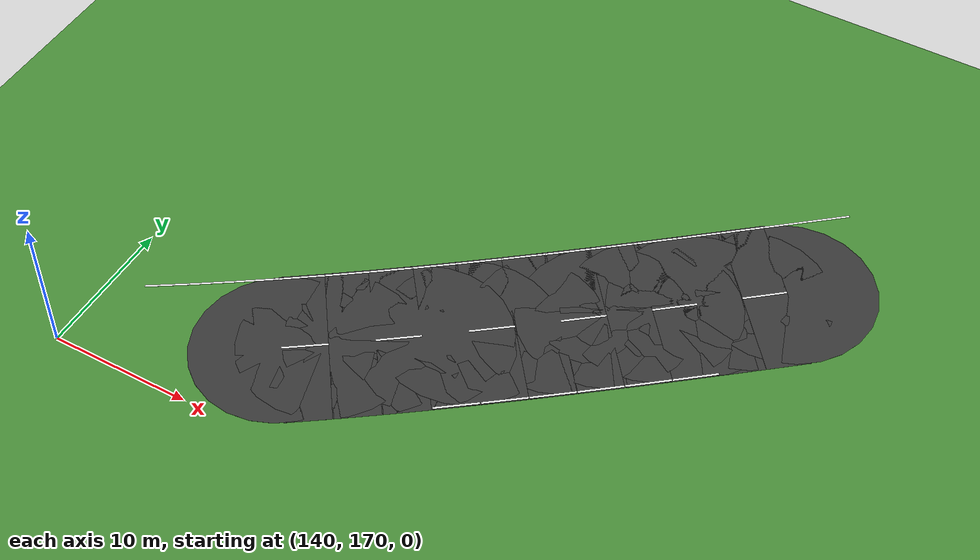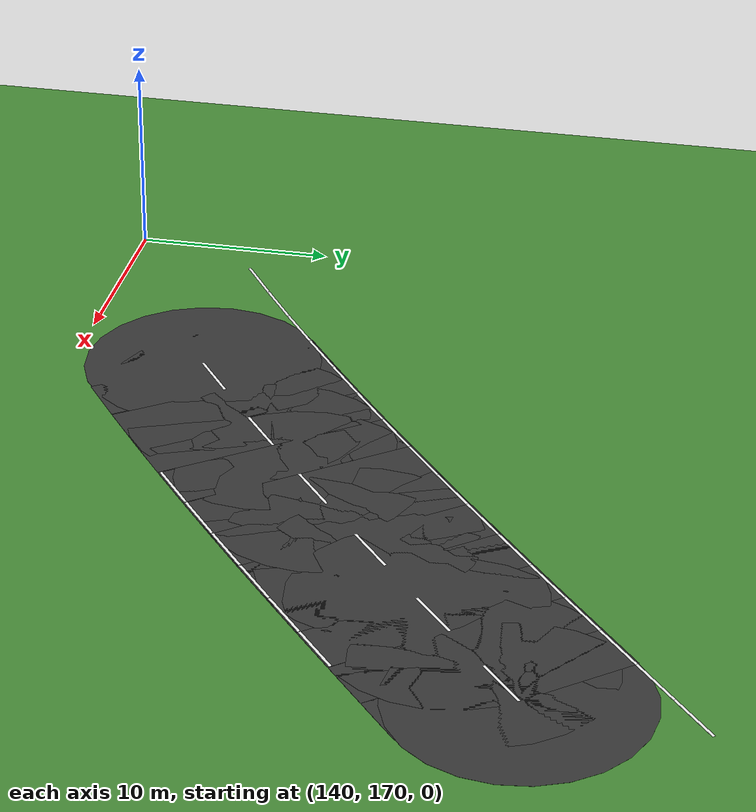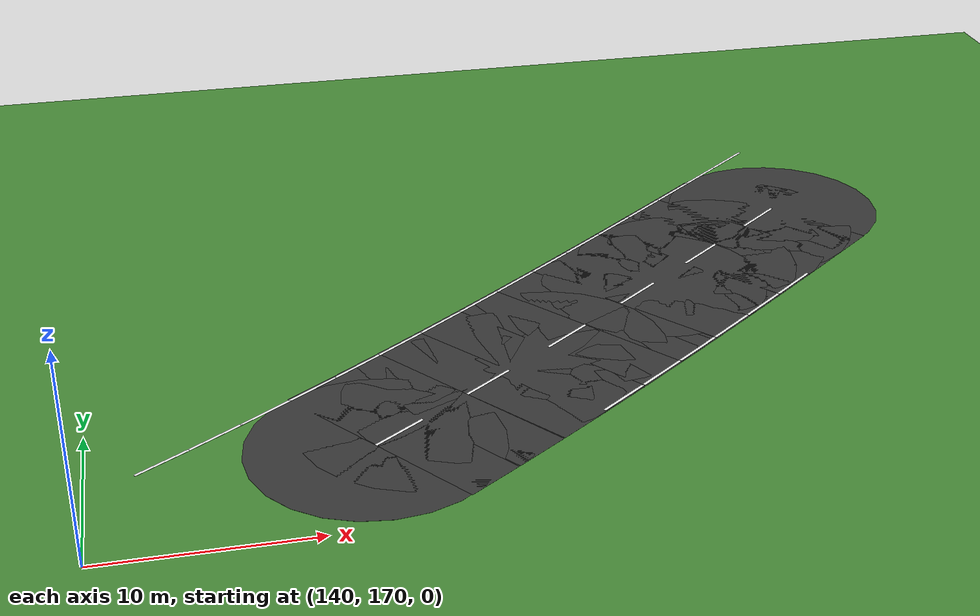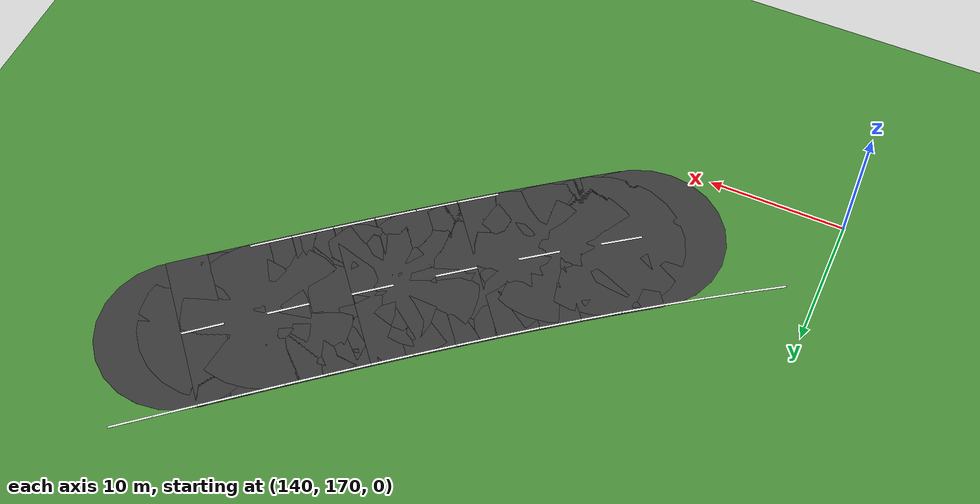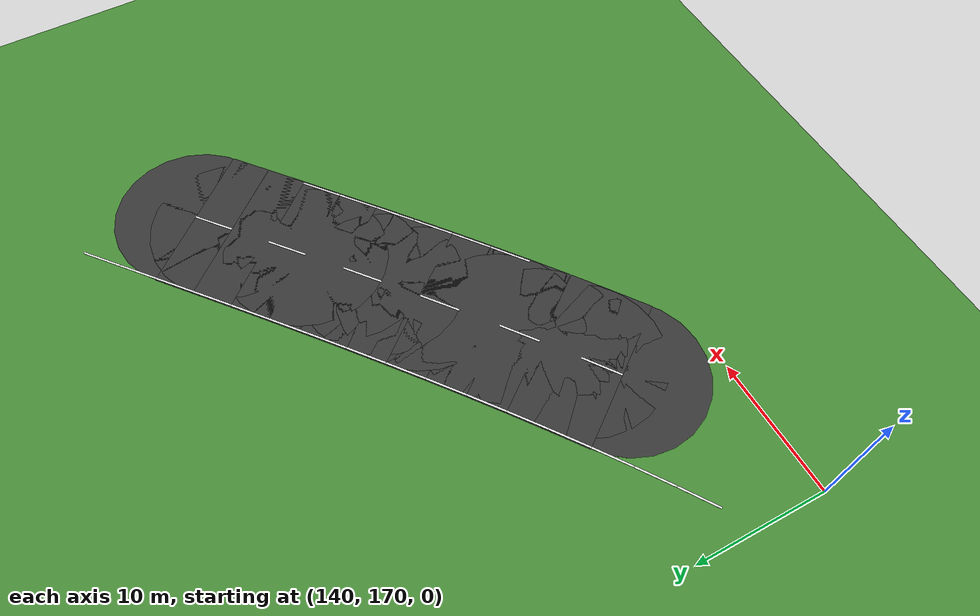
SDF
<sdf version="1.6">
 <world name="sem_silesia_ring_2026">
  <model name="ground_plane">
   <static>true</static>
   <link name="link">
    <collision name="collision">
     <geometry><plane><normal>0 0 1</normal><size>1200 1200</size></plane></geometry>
     <surface><friction><ode><mu>0.6</mu><mu2>0.6</mu2></ode></friction></surface>
    </collision>
    <visual name="visual">
     <geometry><plane><normal>0 0 1</normal><size>1200 1200</size></plane></geometry>
     <material><ambient>0.28 0.55 0.22 1</ambient><diffuse>0.28 0.55 0.22 1</diffuse></material>
    </visual>
   </link>
  </model>
  <model name="wl_R_s252">
   <static>true</static>
   <pose>178.4328 204.4010 0.0070 0 0 -2.4422</pose>
   <link name="link">
    <visual name="v">
     <geometry><box><size>3.0025 0.1500 0.0080</size></box></geometry>
     <material><ambient>0.95 0.95 0.95 1</ambient><diffuse>0.95 0.95 0.95 1</diffuse></material>
    </visual>
   </link>
  </model>
  <model name="wl_R_s253">
   <static>true</static>
   <pose>176.1369 202.4706 0.0070 0 0 -2.4427</pose>
   <link name="link">
    <visual name="v">
     <geometry><box><size>3.0025 0.1500 0.0080</size></box></geometry>
     <material><ambient>0.95 0.95 0.95 1</ambient><diffuse>0.95 0.95 0.95 1</diffuse></material>
    </visual>
   </link>
  </model>
  <model name="road_s254">
   <static>true</static>
   <pose>177.6004 196.0621 0.0030 0 0 -2.4443</pose>
   <link name="link">
    <visual name="v">
     <geometry><box><size>3.0025 12.0000 0.0060</size></box></geometry>
     <material><ambient>0.22 0.22 0.22 1</ambient><diffuse>0.22 0.22 0.22 1</diffuse></material>
    </visual>
    <collision name="c">
     <geometry><box><size>3.0025 12.0000 0.0060</size></box></geometry>
     <surface><friction><ode><mu>0.9</mu><mu2>0.9</mu2></ode></friction></surface>
    </collision>
   </link>
  </model>
  <model name="road_jnt254">
   <static>true</static>
   <pose>178.7512 197.0262 0.0030 0 0 0</pose>
   <link name="link">
    <visual name="v">
     <geometry><cylinder><radius>6.0000</radius><length>0.0060</length></cylinder></geometry>
     <material><ambient>0.22 0.22 0.22 1</ambient><diffuse>0.22 0.22 0.22 1</diffuse></material>
    </visual>
    <collision name="c">
     <geometry><cylinder><radius>6.0000</radius><length>0.0060</length></cylinder></geometry>
     <surface><friction><ode><mu>0.9</mu><mu2>0.9</mu2></ode></friction></surface>
    </collision>
   </link>
  </model>
  <model name="wl_R_s254">
   <static>true</static>
   <pose>173.8436 200.5465 0.0070 0 0 -2.4443</pose>
   <link name="link">
    <visual name="v">
     <geometry><box><size>3.0025 0.1500 0.0080</size></box></geometry>
     <material><ambient>0.95 0.95 0.95 1</ambient><diffuse>0.95 0.95 0.95 1</diffuse></material>
    </visual>
   </link>
  </model>
  <model name="cd_s254">
   <static>true</static>
   <pose>177.6004 196.0621 0.0070 0 0 -2.4443</pose>
   <link name="link">
    <visual name="v">
     <geometry><box><size>3.0025 0.1500 0.0080</size></box></geometry>
     <material><ambient>0.95 0.95 0.95 1</ambient><diffuse>0.95 0.95 0.95 1</diffuse></material>
    </visual>
   </link>
  </model>
  <model name="road_s255">
   <static>true</static>
   <pose>175.2963 194.1369 0.0030 0 0 -2.4468</pose>
   <link name="link">
    <visual name="v">
     <geometry><box><size>3.0025 12.0000 0.0060</size></box></geometry>
     <material><ambient>0.22 0.22 0.22 1</ambient><diffuse>0.22 0.22 0.22 1</diffuse></material>
    </visual>
    <collision name="c">
     <geometry><box><size>3.0025 12.0000 0.0060</size></box></geometry>
     <surface><friction><ode><mu>0.9</mu><mu2>0.9</mu2></ode></friction></surface>
    </collision>
   </link>
  </model>
  <model name="road_jnt255">
   <static>true</static>
   <pose>176.4496 195.0980 0.0030 0 0 0</pose>
   <link name="link">
    <visual name="v">
     <geometry><cylinder><radius>6.0000</radius><length>0.0060</length></cylinder></geometry>
     <material><ambient>0.22 0.22 0.22 1</ambient><diffuse>0.22 0.22 0.22 1</diffuse></material>
    </visual>
    <collision name="c">
     <geometry><cylinder><radius>6.0000</radius><length>0.0060</length></cylinder></geometry>
     <surface><friction><ode><mu>0.9</mu><mu2>0.9</mu2></ode></friction></surface>
    </collision>
   </link>
  </model>
  <model name="wl_R_s255">
   <static>true</static>
   <pose>171.5511 198.6309 0.0070 0 0 -2.4468</pose>
   <link name="link">
    <visual name="v">
     <geometry><box><size>3.0025 0.1500 0.0080</size></box></geometry>
     <material><ambient>0.95 0.95 0.95 1</ambient><diffuse>0.95 0.95 0.95 1</diffuse></material>
    </visual>
   </link>
  </model>
  <model name="road_s256">
   <static>true</static>
   <pose>172.9863 192.2188 0.0030 0 0 -2.4504</pose>
   <link name="link">
    <visual name="v">
     <geometry><box><size>3.0025 12.0000 0.0060</size></box></geometry>
     <material><ambient>0.22 0.22 0.22 1</ambient><diffuse>0.22 0.22 0.22 1</diffuse></material>
    </visual>
    <collision name="c">
     <geometry><box><size>3.0025 12.0000 0.0060</size></box></geometry>
     <surface><friction><ode><mu>0.9</mu><mu2>0.9</mu2></ode></friction></surface>
    </collision>
   </link>
  </model>
  <model name="road_jnt256">
   <static>true</static>
   <pose>174.1430 193.1758 0.0030 0 0 0</pose>
   <link name="link">
    <visual name="v">
     <geometry><cylinder><radius>6.0000</radius><length>0.0060</length></cylinder></geometry>
     <material><ambient>0.22 0.22 0.22 1</ambient><diffuse>0.22 0.22 0.22 1</diffuse></material>
    </visual>
    <collision name="c">
     <geometry><cylinder><radius>6.0000</radius><length>0.0060</length></cylinder></geometry>
     <surface><friction><ode><mu>0.9</mu><mu2>0.9</mu2></ode></friction></surface>
    </collision>
   </link>
  </model>
  <model name="wl_L_s256">
   <static>true</static>
   <pose>176.7154 187.7114 0.0070 0 0 -2.4504</pose>
   <link name="link">
    <visual name="v">
     <geometry><box><size>3.0025 0.1500 0.0080</size></box></geometry>
     <material><ambient>0.95 0.95 0.95 1</ambient><diffuse>0.95 0.95 0.95 1</diffuse></material>
    </visual>
   </link>
  </model>
  <model name="wl_R_s256">
   <static>true</static>
   <pose>169.2573 196.7262 0.0070 0 0 -2.4504</pose>
   <link name="link">
    <visual name="v">
     <geometry><box><size>3.0025 0.1500 0.0080</size></box></geometry>
     <material><ambient>0.95 0.95 0.95 1</ambient><diffuse>0.95 0.95 0.95 1</diffuse></material>
    </visual>
   </link>
  </model>
  <model name="cd_s256">
   <static>true</static>
   <pose>172.9863 192.2188 0.0070 0 0 -2.4504</pose>
   <link name="link">
    <visual name="v">
     <geometry><box><size>3.0025 0.1500 0.0080</size></box></geometry>
     <material><ambient>0.95 0.95 0.95 1</ambient><diffuse>0.95 0.95 0.95 1</diffuse></material>
    </visual>
   </link>
  </model>
  <model name="road_s257">
   <static>true</static>
   <pose>170.6685 190.3102 0.0030 0 0 -2.4550</pose>
   <link name="link">
    <visual name="v">
     <geometry><box><size>3.0025 12.0000 0.0060</size></box></geometry>
     <material><ambient>0.22 0.22 0.22 1</ambient><diffuse>0.22 0.22 0.22 1</diffuse></material>
    </visual>
    <collision name="c">
     <geometry><box><size>3.0025 12.0000 0.0060</size></box></geometry>
     <surface><friction><ode><mu>0.9</mu><mu2>0.9</mu2></ode></friction></surface>
    </collision>
   </link>
  </model>
  <model name="road_jnt257">
   <static>true</static>
   <pose>171.8296 191.2618 0.0030 0 0 0</pose>
   <link name="link">
    <visual name="v">
     <geometry><cylinder><radius>6.0000</radius><length>0.0060</length></cylinder></geometry>
     <material><ambient>0.22 0.22 0.22 1</ambient><diffuse>0.22 0.22 0.22 1</diffuse></material>
    </visual>
    <collision name="c">
     <geometry><cylinder><radius>6.0000</radius><length>0.0060</length></cylinder></geometry>
     <surface><friction><ode><mu>0.9</mu><mu2>0.9</mu2></ode></friction></surface>
    </collision>
   </link>
  </model>
  <model name="wl_L_s257">
   <static>true</static>
   <pose>174.3766 185.7856 0.0070 0 0 -2.4550</pose>
   <link name="link">
    <visual name="v">
     <geometry><box><size>3.0025 0.1500 0.0080</size></box></geometry>
     <material><ambient>0.95 0.95 0.95 1</ambient><diffuse>0.95 0.95 0.95 1</diffuse></material>
    </visual>
   </link>
  </model>
  <model name="wl_R_s257">
   <static>true</static>
   <pose>166.9603 194.8348 0.0070 0 0 -2.4550</pose>
   <link name="link">
    <visual name="v">
     <geometry><box><size>3.0025 0.1500 0.0080</size></box></geometry>
     <material><ambient>0.95 0.95 0.95 1</ambient><diffuse>0.95 0.95 0.95 1</diffuse></material>
    </visual>
   </link>
  </model>
  <model name="road_s258">
   <static>true</static>
   <pose>168.3408 188.4136 0.0030 0 0 -2.4607</pose>
   <link name="link">
    <visual name="v">
     <geometry><box><size>3.0025 12.0000 0.0060</size></box></geometry>
     <material><ambient>0.22 0.22 0.22 1</ambient><diffuse>0.22 0.22 0.22 1</diffuse></material>
    </visual>
    <collision name="c">
     <geometry><box><size>3.0025 12.0000 0.0060</size></box></geometry>
     <surface><friction><ode><mu>0.9</mu><mu2>0.9</mu2></ode></friction></surface>
    </collision>
   </link>
  </model>
  <model name="road_jnt258">
   <static>true</static>
   <pose>169.5073 189.3586 0.0030 0 0 0</pose>
   <link name="link">
    <visual name="v">
     <geometry><cylinder><radius>6.0000</radius><length>0.0060</length></cylinder></geometry>
     <material><ambient>0.22 0.22 0.22 1</ambient><diffuse>0.22 0.22 0.22 1</diffuse></material>
    </visual>
    <collision name="c">
     <geometry><cylinder><radius>6.0000</radius><length>0.0060</length></cylinder></geometry>
     <surface><friction><ode><mu>0.9</mu><mu2>0.9</mu2></ode></friction></surface>
    </collision>
   </link>
  </model>
  <model name="wl_L_s258">
   <static>true</static>
   <pose>172.0233 183.8681 0.0070 0 0 -2.4607</pose>
   <link name="link">
    <visual name="v">
     <geometry><box><size>3.0025 0.1500 0.0080</size></box></geometry>
     <material><ambient>0.95 0.95 0.95 1</ambient><diffuse>0.95 0.95 0.95 1</diffuse></material>
    </visual>
   </link>
  </model>
  <model name="wl_R_s258">
   <static>true</static>
   <pose>164.6583 192.9591 0.0070 0 0 -2.4607</pose>
   <link name="link">
    <visual name="v">
     <geometry><box><size>3.0025 0.1500 0.0080</size></box></geometry>
     <material><ambient>0.95 0.95 0.95 1</ambient><diffuse>0.95 0.95 0.95 1</diffuse></material>
    </visual>
   </link>
  </model>
  <model name="cd_s258">
   <static>true</static>
   <pose>168.3408 188.4136 0.0070 0 0 -2.4607</pose>
   <link name="link">
    <visual name="v">
     <geometry><box><size>3.0025 0.1500 0.0080</size></box></geometry>
     <material><ambient>0.95 0.95 0.95 1</ambient><diffuse>0.95 0.95 0.95 1</diffuse></material>
    </visual>
   </link>
  </model>
  <model name="road_s259">
   <static>true</static>
   <pose>166.0015 186.5314 0.0030 0 0 -2.4674</pose>
   <link name="link">
    <visual name="v">
     <geometry><box><size>3.0025 12.0000 0.0060</size></box></geometry>
     <material><ambient>0.22 0.22 0.22 1</ambient><diffuse>0.22 0.22 0.22 1</diffuse></material>
    </visual>
    <collision name="c">
     <geometry><box><size>3.0025 12.0000 0.0060</size></box></geometry>
     <surface><friction><ode><mu>0.9</mu><mu2>0.9</mu2></ode></friction></surface>
    </collision>
   </link>
  </model>
  <model name="road_jnt259">
   <static>true</static>
   <pose>167.1743 187.4686 0.0030 0 0 0</pose>
   <link name="link">
    <visual name="v">
     <geometry><cylinder><radius>6.0000</radius><length>0.0060</length></cylinder></geometry>
     <material><ambient>0.22 0.22 0.22 1</ambient><diffuse>0.22 0.22 0.22 1</diffuse></material>
    </visual>
    <collision name="c">
     <geometry><cylinder><radius>6.0000</radius><length>0.0060</length></cylinder></geometry>
     <surface><friction><ode><mu>0.9</mu><mu2>0.9</mu2></ode></friction></surface>
    </collision>
   </link>
  </model>
  <model name="wl_L_s259">
   <static>true</static>
   <pose>169.6534 181.9613 0.0070 0 0 -2.4674</pose>
   <link name="link">
    <visual name="v">
     <geometry><box><size>3.0025 0.1500 0.0080</size></box></geometry>
     <material><ambient>0.95 0.95 0.95 1</ambient><diffuse>0.95 0.95 0.95 1</diffuse></material>
    </visual>
   </link>
  </model>
  <model name="wl_R_s259">
   <static>true</static>
   <pose>162.3496 191.1015 0.0070 0 0 -2.4674</pose>
   <link name="link">
    <visual name="v">
     <geometry><box><size>3.0025 0.1500 0.0080</size></box></geometry>
     <material><ambient>0.95 0.95 0.95 1</ambient><diffuse>0.95 0.95 0.95 1</diffuse></material>
    </visual>
   </link>
  </model>
  <model name="road_s260">
   <static>true</static>
   <pose>163.6487 184.6661 0.0030 0 0 -2.4751</pose>
   <link name="link">
    <visual name="v">
     <geometry><box><size>3.0025 12.0000 0.0060</size></box></geometry>
     <material><ambient>0.22 0.22 0.22 1</ambient><diffuse>0.22 0.22 0.22 1</diffuse></material>
    </visual>
    <collision name="c">
     <geometry><box><size>3.0025 12.0000 0.0060</size></box></geometry>
     <surface><friction><ode><mu>0.9</mu><mu2>0.9</mu2></ode></friction></surface>
    </collision>
   </link>
  </model>
  <model name="road_jnt260">
   <static>true</static>
   <pose>164.8287 185.5942 0.0030 0 0 0</pose>
   <link name="link">
    <visual name="v">
     <geometry><cylinder><radius>6.0000</radius><length>0.0060</length></cylinder></geometry>
     <material><ambient>0.22 0.22 0.22 1</ambient><diffuse>0.22 0.22 0.22 1</diffuse></material>
    </visual>
    <collision name="c">
     <geometry><cylinder><radius>6.0000</radius><length>0.0060</length></cylinder></geometry>
     <surface><friction><ode><mu>0.9</mu><mu2>0.9</mu2></ode></friction></surface>
    </collision>
   </link>
  </model>
  <model name="wl_L_s260">
   <static>true</static>
   <pose>167.2652 180.0679 0.0070 0 0 -2.4751</pose>
   <link name="link">
    <visual name="v">
     <geometry><box><size>3.0025 0.1500 0.0080</size></box></geometry>
     <material><ambient>0.95 0.95 0.95 1</ambient><diffuse>0.95 0.95 0.95 1</diffuse></material>
    </visual>
   </link>
  </model>
  <model name="wl_R_s260">
   <static>true</static>
   <pose>160.0322 189.2643 0.0070 0 0 -2.4751</pose>
   <link name="link">
    <visual name="v">
     <geometry><box><size>3.0025 0.1500 0.0080</size></box></geometry>
     <material><ambient>0.95 0.95 0.95 1</ambient><diffuse>0.95 0.95 0.95 1</diffuse></material>
    </visual>
   </link>
  </model>
  <model name="cd_s260">
   <static>true</static>
   <pose>163.6487 184.6661 0.0070 0 0 -2.4751</pose>
   <link name="link">
    <visual name="v">
     <geometry><box><size>3.0025 0.1500 0.0080</size></box></geometry>
     <material><ambient>0.95 0.95 0.95 1</ambient><diffuse>0.95 0.95 0.95 1</diffuse></material>
    </visual>
   </link>
  </model>
  <model name="road_s261">
   <static>true</static>
   <pose>161.2805 182.8203 0.0030 0 0 -2.4839</pose>
   <link name="link">
    <visual name="v">
     <geometry><box><size>3.0025 12.0000 0.0060</size></box></geometry>
     <material><ambient>0.22 0.22 0.22 1</ambient><diffuse>0.22 0.22 0.22 1</diffuse></material>
    </visual>
    <collision name="c">
     <geometry><box><size>3.0025 12.0000 0.0060</size></box></geometry>
     <surface><friction><ode><mu>0.9</mu><mu2>0.9</mu2></ode></friction></surface>
    </collision>
   </link>
  </model>
  <model name="road_jnt261">
   <static>true</static>
   <pose>162.4686 183.7380 0.0030 0 0 0</pose>
   <link name="link">
    <visual name="v">
     <geometry><cylinder><radius>6.0000</radius><length>0.0060</length></cylinder></geometry>
     <material><ambient>0.22 0.22 0.22 1</ambient><diffuse>0.22 0.22 0.22 1</diffuse></material>
    </visual>
    <collision name="c">
     <geometry><cylinder><radius>6.0000</radius><length>0.0060</length></cylinder></geometry>
     <surface><friction><ode><mu>0.9</mu><mu2>0.9</mu2></ode></friction></surface>
    </collision>
   </link>
  </model>
  <model name="wl_L_s261">
   <static>true</static>
   <pose>164.8566 178.1906 0.0070 0 0 -2.4839</pose>
   <link name="link">
    <visual name="v">
     <geometry><box><size>3.0025 0.1500 0.0080</size></box></geometry>
     <material><ambient>0.95 0.95 0.95 1</ambient><diffuse>0.95 0.95 0.95 1</diffuse></material>
    </visual>
   </link>
  </model>
  <model name="wl_R_s261">
   <static>true</static>
   <pose>157.7045 187.4501 0.0070 0 0 -2.4839</pose>
   <link name="link">
    <visual name="v">
     <geometry><box><size>3.0025 0.1500 0.0080</size></box></geometry>
     <material><ambient>0.95 0.95 0.95 1</ambient><diffuse>0.95 0.95 0.95 1</diffuse></material>
    </visual>
   </link>
  </model>
  <model name="road_s262">
   <static>true</static>
   <pose>158.8954 180.9966 0.0030 0 0 -2.4937</pose>
   <link name="link">
    <visual name="v">
     <geometry><box><size>3.0025 12.0000 0.0060</size></box></geometry>
     <material><ambient>0.22 0.22 0.22 1</ambient><diffuse>0.22 0.22 0.22 1</diffuse></material>
    </visual>
    <collision name="c">
     <geometry><box><size>3.0025 12.0000 0.0060</size></box></geometry>
     <surface><friction><ode><mu>0.9</mu><mu2>0.9</mu2></ode></friction></surface>
    </collision>
   </link>
  </model>
  <model name="road_jnt262">
   <static>true</static>
   <pose>160.0924 181.9026 0.0030 0 0 0</pose>
   <link name="link">
    <visual name="v">
     <geometry><cylinder><radius>6.0000</radius><length>0.0060</length></cylinder></geometry>
     <material><ambient>0.22 0.22 0.22 1</ambient><diffuse>0.22 0.22 0.22 1</diffuse></material>
    </visual>
    <collision name="c">
     <geometry><cylinder><radius>6.0000</radius><length>0.0060</length></cylinder></geometry>
     <surface><friction><ode><mu>0.9</mu><mu2>0.9</mu2></ode></friction></surface>
    </collision>
   </link>
  </model>
  <model name="wl_R_s262">
   <static>true</static>
   <pose>155.3649 185.6612 0.0070 0 0 -2.4937</pose>
   <link name="link">
    <visual name="v">
     <geometry><box><size>3.0025 0.1500 0.0080</size></box></geometry>
     <material><ambient>0.95 0.95 0.95 1</ambient><diffuse>0.95 0.95 0.95 1</diffuse></material>
    </visual>
   </link>
  </model>
  <model name="cd_s262">
   <static>true</static>
   <pose>158.8954 180.9966 0.0070 0 0 -2.4937</pose>
   <link name="link">
    <visual name="v">
     <geometry><box><size>3.0025 0.1500 0.0080</size></box></geometry>
     <material><ambient>0.95 0.95 0.95 1</ambient><diffuse>0.95 0.95 0.95 1</diffuse></material>
    </visual>
   </link>
  </model>
  <model name="road_s263">
   <static>true</static>
   <pose>156.4915 179.1976 0.0030 0 0 -2.5045</pose>
   <link name="link">
    <visual name="v">
     <geometry><box><size>3.0025 12.0000 0.0060</size></box></geometry>
     <material><ambient>0.22 0.22 0.22 1</ambient><diffuse>0.22 0.22 0.22 1</diffuse></material>
    </visual>
    <collision name="c">
     <geometry><box><size>3.0025 12.0000 0.0060</size></box></geometry>
     <surface><friction><ode><mu>0.9</mu><mu2>0.9</mu2></ode></friction></surface>
    </collision>
   </link>
  </model>
  <model name="road_jnt263">
   <static>true</static>
   <pose>157.6983 180.0906 0.0030 0 0 0</pose>
   <link name="link">
    <visual name="v">
     <geometry><cylinder><radius>6.0000</radius><length>0.0060</length></cylinder></geometry>
     <material><ambient>0.22 0.22 0.22 1</ambient><diffuse>0.22 0.22 0.22 1</diffuse></material>
    </visual>
    <collision name="c">
     <geometry><cylinder><radius>6.0000</radius><length>0.0060</length></cylinder></geometry>
     <surface><friction><ode><mu>0.9</mu><mu2>0.9</mu2></ode></friction></surface>
    </collision>
   </link>
  </model>
  <model name="wl_R_s263">
   <static>true</static>
   <pose>153.0118 183.9002 0.0070 0 0 -2.5045</pose>
   <link name="link">
    <visual name="v">
     <geometry><box><size>3.0025 0.1500 0.0080</size></box></geometry>
     <material><ambient>0.95 0.95 0.95 1</ambient><diffuse>0.95 0.95 0.95 1</diffuse></material>
    </visual>
   </link>
  </model>
  <model name="road_s264">
   <static>true</static>
   <pose>154.0674 177.4260 0.0030 0 0 -2.5164</pose>
   <link name="link">
    <visual name="v">
     <geometry><box><size>3.0025 12.0000 0.0060</size></box></geometry>
     <material><ambient>0.22 0.22 0.22 1</ambient><diffuse>0.22 0.22 0.22 1</diffuse></material>
    </visual>
    <collision name="c">
     <geometry><box><size>3.0025 12.0000 0.0060</size></box></geometry>
     <surface><friction><ode><mu>0.9</mu><mu2>0.9</mu2></ode></friction></surface>
    </collision>
   </link>
  </model>
  <model name="road_jnt264">
   <static>true</static>
   <pose>155.2847 178.3046 0.0030 0 0 0</pose>
   <link name="link">
    <visual name="v">
     <geometry><cylinder><radius>6.0000</radius><length>0.0060</length></cylinder></geometry>
     <material><ambient>0.22 0.22 0.22 1</ambient><diffuse>0.22 0.22 0.22 1</diffuse></material>
    </visual>
    <collision name="c">
     <geometry><cylinder><radius>6.0000</radius><length>0.0060</length></cylinder></geometry>
     <surface><friction><ode><mu>0.9</mu><mu2>0.9</mu2></ode></friction></surface>
    </collision>
   </link>
  </model>
  <model name="wl_R_s264">
   <static>true</static>
   <pose>150.6437 182.1695 0.0070 0 0 -2.5164</pose>
   <link name="link">
    <visual name="v">
     <geometry><box><size>3.0025 0.1500 0.0080</size></box></geometry>
     <material><ambient>0.95 0.95 0.95 1</ambient><diffuse>0.95 0.95 0.95 1</diffuse></material>
    </visual>
   </link>
  </model>
  <model name="cd_s264">
   <static>true</static>
   <pose>154.0674 177.4260 0.0070 0 0 -2.5164</pose>
   <link name="link">
    <visual name="v">
     <geometry><box><size>3.0025 0.1500 0.0080</size></box></geometry>
     <material><ambient>0.95 0.95 0.95 1</ambient><diffuse>0.95 0.95 0.95 1</diffuse></material>
    </visual>
   </link>
  </model>
  <model name="road_jnt265">
   <static>true</static>
   <pose>152.8501 176.5474 0.0030 0 0 0</pose>
   <link name="link">
    <visual name="v">
     <geometry><cylinder><radius>6.0000</radius><length>0.0060</length></cylinder></geometry>
     <material><ambient>0.22 0.22 0.22 1</ambient><diffuse>0.22 0.22 0.22 1</diffuse></material>
    </visual>
    <collision name="c">
     <geometry><cylinder><radius>6.0000</radius><length>0.0060</length></cylinder></geometry>
     <surface><friction><ode><mu>0.9</mu><mu2>0.9</mu2></ode></friction></surface>
    </collision>
   </link>
  </model>
  <model name="wl_R_s265">
   <static>true</static>
   <pose>148.2593 180.4717 0.0070 0 0 -2.5293</pose>
   <link name="link">
    <visual name="v">
     <geometry><box><size>3.0025 0.1500 0.0080</size></box></geometry>
     <material><ambient>0.95 0.95 0.95 1</ambient><diffuse>0.95 0.95 0.95 1</diffuse></material>
    </visual>
   </link>
  </model>
  <model name="wl_R_s266">
   <static>true</static>
   <pose>145.8572 178.8094 0.0070 0 0 -2.5432</pose>
   <link name="link">
    <visual name="v">
     <geometry><box><size>3.0025 0.1500 0.0080</size></box></geometry>
     <material><ambient>0.95 0.95 0.95 1</ambient><diffuse>0.95 0.95 0.95 1</diffuse></material>
    </visual>
   </link>
  </model>
  <model name="wl_R_s267">
   <static>true</static>
   <pose>143.4363 177.1850 0.0070 0 0 -2.5580</pose>
   <link name="link">
    <visual name="v">
     <geometry><box><size>3.0025 0.1500 0.0080</size></box></geometry>
     <material><ambient>0.95 0.95 0.95 1</ambient><diffuse>0.95 0.95 0.95 1</diffuse></material>
    </visual>
   </link>
  </model>
 </world>
</sdf>
